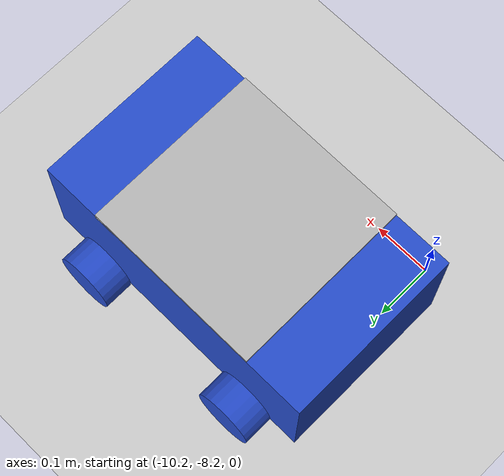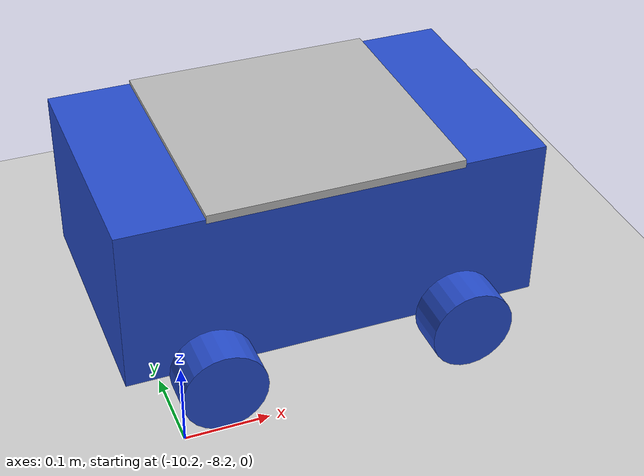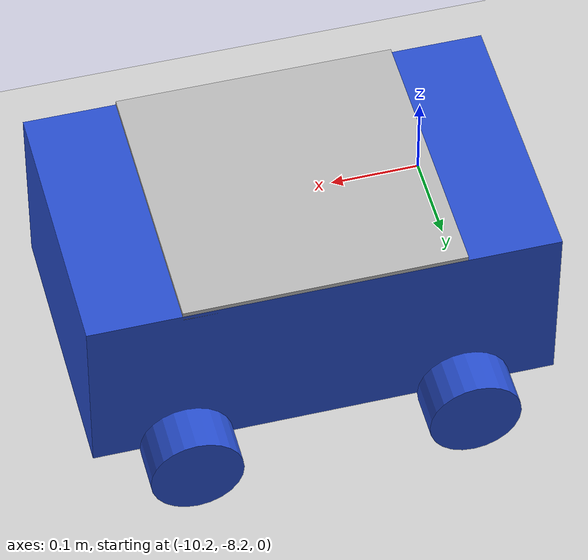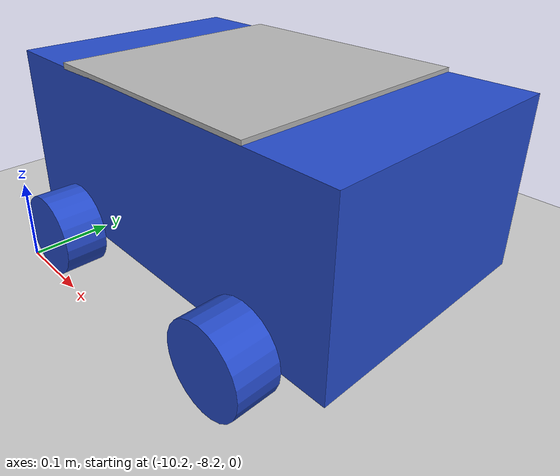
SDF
<sdf version="1.7">
 <world name="default">
  <plugin name="gazebo_ros_state" filename="libgazebo_ros_state.so">
   <ros><namespace>/gazebo</namespace></ros>
   <update_rate>50.0</update_rate>
  </plugin>
  <light name="sun" type="directional">
   <pose>0 0 10 0 -0 0</pose>
   <diffuse>0.8 0.8 0.8 1</diffuse>
   <specular>0.2 0.2 0.2 1</specular>
   <attenuation>
    <range>1000</range>
    <constant>0.9</constant>
    <linear>0.01</linear>
    <quadratic>0.001</quadratic>
   </attenuation>
   <direction>-0.5 0.1 -0.9</direction>
   <spot><inner_angle>0</inner_angle><outer_angle>0</outer_angle><falloff>0</falloff></spot>
  </light>
  <model name="ground_plane">
   <static>1</static>
   <link name="link">
    <collision name="collision">
     <geometry><plane><normal>0 0 1</normal><size>100 100</size></plane></geometry>
     <surface><friction><ode><mu>100</mu><mu2>50</mu2></ode></friction></surface>
    </collision>
    <visual name="visual">
     <cast_shadows>0</cast_shadows>
     <geometry><plane><normal>0 0 1</normal><size>30 20</size></plane></geometry>
     <material>
      <script><uri>file://media/materials/scripts/my_ground.material</uri><name>GroundPic/Texture_1</name></script>
     </material>
    </visual>
   </link>
  </model>
  <gravity>0 0 -9.8</gravity>
  <magnetic_field>6e-06 2.3e-05 -4.2e-05</magnetic_field>
  <atmosphere type="adiabatic"/>
  <physics type="ode">
   <max_step_size>0.001</max_step_size>
   <real_time_factor>1</real_time_factor>
   <real_time_update_rate>1000</real_time_update_rate>
  </physics>
  <scene><ambient>0.4 0.4 0.4 1</ambient><background>0.7 0.7 0.7 1</background><shadows>1</shadows></scene>
  <audio><device>default</device></audio>
  <spherical_coordinates>
   <surface_model>EARTH_WGS84</surface_model>
   <latitude_deg>0</latitude_deg>
   <longitude_deg>0</longitude_deg>
   <elevation>0</elevation>
   <heading_deg>0</heading_deg>
  </spherical_coordinates>
  <model name="ssmr">
   <link name="base_footprint">
    <inertial>
     <pose>0 0 0.15 0 -0 0</pose>
     <mass>6</mass>
     <inertia><ixx>0.065</ixx><ixy>0</ixy><ixz>0</ixz><iyy>0.145</iyy><iyz>0</iyz><izz>0.17</izz></inertia>
    </inertial>
    <collision name="base_footprint_fixed_joint_lump__base_link_collision">
     <pose>0 0 0.15 0 -0 0</pose>
     <geometry><box><size>0.5 0.3 0.2</size></box></geometry>
    </collision>
    <visual name="base_footprint_fixed_joint_lump__base_link_visual">
     <pose>0 0 0.15 0 -0 0</pose>
     <geometry><box><size>0.5 0.3 0.2</size></box></geometry>
     <material>
      <script><name>Gazebo/Blue</name><uri>file://media/materials/scripts/gazebo.material</uri></script>
     </material>
    </visual>
    <visual name="base_footprint_fixed_joint_lump__robot_picture_visual_1">
     <pose>0 0 0.25 0 -0 0</pose>
     <geometry><box><size>0.3 0.3 0.01</size></box></geometry>
     <material>
      <script><name>MyRobot/MyTexture</name><uri>file://media/materials/scripts/gazebo.material</uri></script>
     </material>
    </visual>
    <sensor name="my_imu" type="imu">
     <always_on>1</always_on>
     <update_rate>10</update_rate>
     <plugin name="imu_plugin" filename="libgazebo_ros_imu_sensor.so">
      <ros><namespace>/</namespace><remapping>~/out:=imu</remapping></ros>
     </plugin>
     <pose>0 0 0.15 0 -0 0</pose>
    </sensor>
    <sensor name="my_gps" type="gps">
     <always_on>1</always_on>
     <update_rate>30</update_rate>
     <plugin name="gps_plugin" filename="libgazebo_ros_gps_sensor.so">
      <ros><namespace>/gps</namespace><remapping>~/out:=data</remapping><remapping>~/vel:=velocity</remapping></ros>
     </plugin>
     <pose>0 0 0.15 0 -0 0</pose>
    </sensor>
   </link>
   <joint name="front_left_wheel_joint" type="revolute">
    <pose relative_to="base_footprint">0.15 0.175 0.05 0 -0 0</pose>
    <parent>base_footprint</parent>
    <child>front_left_wheel</child>
    <axis>
     <xyz>0 1 0</xyz>
     <limit><lower>-1e+16</lower><upper>1e+16</upper></limit>
     <dynamics><spring_reference>0</spring_reference><spring_stiffness>0</spring_stiffness></dynamics>
    </axis>
   </joint>
   <link name="front_left_wheel">
    <pose relative_to="front_left_wheel_joint">0 0 0 0 -0 0</pose>
    <inertial>
     <mass>0.5</mass>
     <inertia>
      <ixx>0.000416667</ixx>
      <ixy>0</ixy>
      <ixz>0</ixz>
      <iyy>0.000416667</iyy>
      <iyz>0</iyz>
      <izz>0.000625</izz>
     </inertia>
    </inertial>
    <collision name="front_left_wheel_collision">
     <pose>0 0 0 1.5708 -0 0</pose>
     <geometry><sphere><radius>0.05</radius></sphere></geometry>
     <surface>
      <contact><ode><kp>1e+07</kp><kd>1</kd></ode></contact>
      <friction><ode><mu>0.2</mu><mu2>0.2</mu2><fdir1>1 0 0</fdir1></ode></friction>
     </surface>
    </collision>
    <visual name="front_left_wheel_visual">
     <pose>0 0 0 1.5708 -0 0</pose>
     <geometry><cylinder><length>0.05</length><radius>0.05</radius></cylinder></geometry>
     <material>
      <script><name>Gazebo/Blue</name><uri>file://media/materials/scripts/gazebo.material</uri></script>
     </material>
    </visual>
   </link>
   <joint name="front_right_wheel_joint" type="revolute">
    <pose relative_to="base_footprint">0.15 -0.175 0.05 0 -0 0</pose>
    <parent>base_footprint</parent>
    <child>front_right_wheel</child>
    <axis>
     <xyz>0 1 0</xyz>
     <limit><lower>-1e+16</lower><upper>1e+16</upper></limit>
     <dynamics><spring_reference>0</spring_reference><spring_stiffness>0</spring_stiffness></dynamics>
    </axis>
   </joint>
   <link name="front_right_wheel">
    <pose relative_to="front_right_wheel_joint">0 0 0 0 -0 0</pose>
    <inertial>
     <mass>0.5</mass>
     <inertia>
      <ixx>0.000416667</ixx>
      <ixy>0</ixy>
      <ixz>0</ixz>
      <iyy>0.000416667</iyy>
      <iyz>0</iyz>
      <izz>0.000625</izz>
     </inertia>
    </inertial>
    <collision name="front_right_wheel_collision">
     <pose>0 0 0 1.5708 -0 0</pose>
     <geometry><sphere><radius>0.05</radius></sphere></geometry>
     <surface>
      <contact><ode><kp>1e+07</kp><kd>1</kd></ode></contact>
      <friction><ode><mu>0.2</mu><mu2>0.2</mu2><fdir1>1 0 0</fdir1></ode></friction>
     </surface>
    </collision>
    <visual name="front_right_wheel_visual">
     <pose>0 0 0 1.5708 -0 0</pose>
     <geometry><cylinder><length>0.05</length><radius>0.05</radius></cylinder></geometry>
     <material>
      <script><name>Gazebo/Blue</name><uri>file://media/materials/scripts/gazebo.material</uri></script>
     </material>
    </visual>
   </link>
   <joint name="rear_left_wheel_joint" type="revolute">
    <pose relative_to="base_footprint">-0.15 0.175 0.05 0 -0 0</pose>
    <parent>base_footprint</parent>
    <child>rear_left_wheel</child>
    <axis>
     <xyz>0 1 0</xyz>
     <limit><lower>-1e+16</lower><upper>1e+16</upper></limit>
     <dynamics><spring_reference>0</spring_reference><spring_stiffness>0</spring_stiffness></dynamics>
    </axis>
   </joint>
   <link name="rear_left_wheel">
    <pose relative_to="rear_left_wheel_joint">0 0 0 0 -0 0</pose>
    <inertial>
     <mass>0.5</mass>
     <inertia>
      <ixx>0.000416667</ixx>
      <ixy>0</ixy>
      <ixz>0</ixz>
      <iyy>0.000416667</iyy>
      <iyz>0</iyz>
      <izz>0.000625</izz>
     </inertia>
    </inertial>
    <collision name="rear_left_wheel_collision">
     <pose>0 0 0 1.5708 -0 0</pose>
     <geometry><sphere><radius>0.05</radius></sphere></geometry>
     <surface>
      <contact><ode><kp>1e+07</kp><kd>1</kd></ode></contact>
      <friction><ode><mu>0.2</mu><mu2>0.2</mu2><fdir1>1 0 0</fdir1></ode></friction>
     </surface>
    </collision>
    <visual name="rear_left_wheel_visual">
     <pose>0 0 0 1.5708 -0 0</pose>
     <geometry><cylinder><length>0.05</length><radius>0.05</radius></cylinder></geometry>
     <material>
      <script><name>Gazebo/Blue</name><uri>file://media/materials/scripts/gazebo.material</uri></script>
     </material>
    </visual>
   </link>
   <joint name="rear_right_wheel_joint" type="revolute">
    <pose relative_to="base_footprint">-0.15 -0.175 0.05 0 -0 0</pose>
    <parent>base_footprint</parent>
    <child>rear_right_wheel</child>
    <axis>
     <xyz>0 1 0</xyz>
     <limit><lower>-1e+16</lower><upper>1e+16</upper></limit>
     <dynamics><spring_reference>0</spring_reference><spring_stiffness>0</spring_stiffness></dynamics>
    </axis>
   </joint>
   <link name="rear_right_wheel">
    <pose relative_to="rear_right_wheel_joint">0 0 0 0 -0 0</pose>
    <inertial>
     <mass>0.5</mass>
     <inertia>
      <ixx>0.000416667</ixx>
      <ixy>0</ixy>
      <ixz>0</ixz>
      <iyy>0.000416667</iyy>
      <iyz>0</iyz>
      <izz>0.000625</izz>
     </inertia>
    </inertial>
    <collision name="rear_right_wheel_collision">
     <pose>0 0 0 1.5708 -0 0</pose>
     <geometry><sphere><radius>0.05</radius></sphere></geometry>
     <surface>
      <contact><ode><kp>1e+07</kp><kd>1</kd></ode></contact>
      <friction><ode><mu>0.2</mu><mu2>0.2</mu2><fdir1>1 0 0</fdir1></ode></friction>
     </surface>
    </collision>
    <visual name="rear_right_wheel_visual">
     <pose>0 0 0 1.5708 -0 0</pose>
     <geometry><cylinder><length>0.05</length><radius>0.05</radius></cylinder></geometry>
     <material>
      <script><name>Gazebo/Blue</name><uri>file://media/materials/scripts/gazebo.material</uri></script>
     </material>
    </visual>
   </link>
   <static>0</static>
   <plugin name="gazebo_ros2_cont" filename="libgazebo_ros2_control.so">
    <parameters>/home/asak/grp/install/grp_system_description/share/grp_system_description/config/ssmr_controllers.yaml</parameters>
   </plugin>
   <pose>-10 -7.99998 -2e-06 0 -0 0</pose>
  </model>
 </world>
</sdf>
